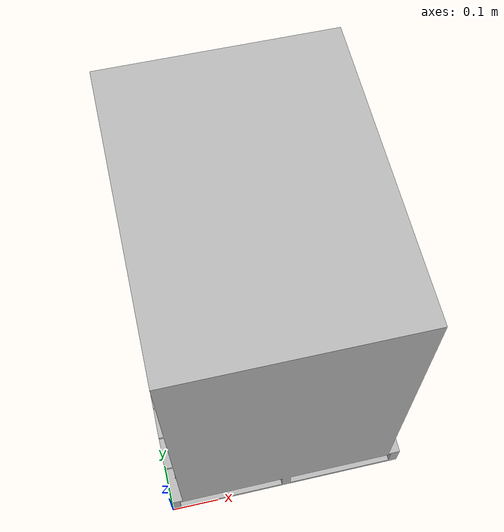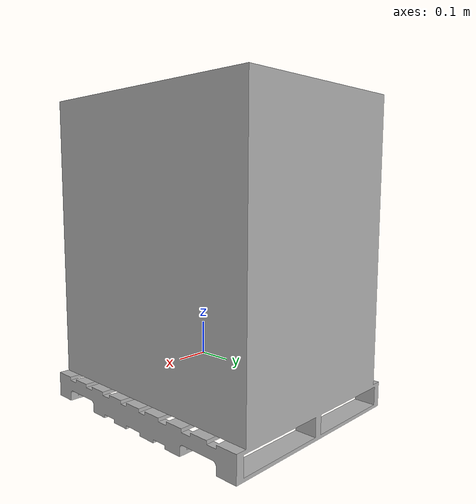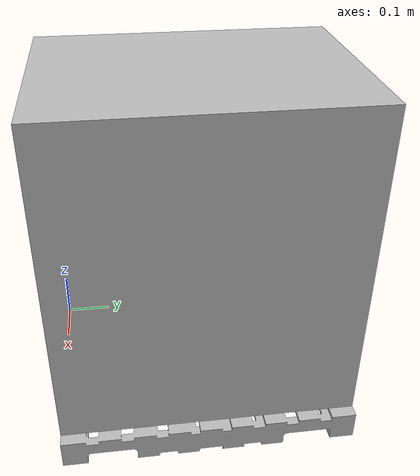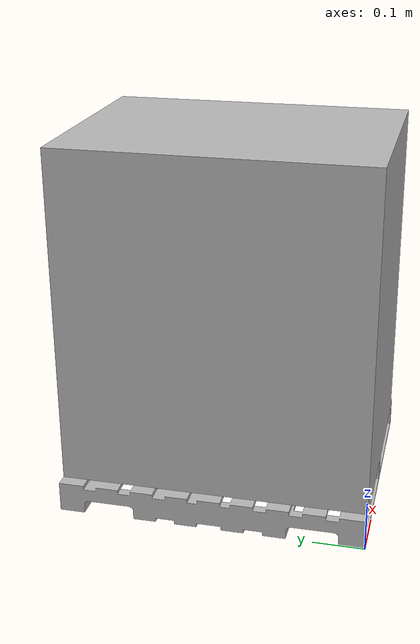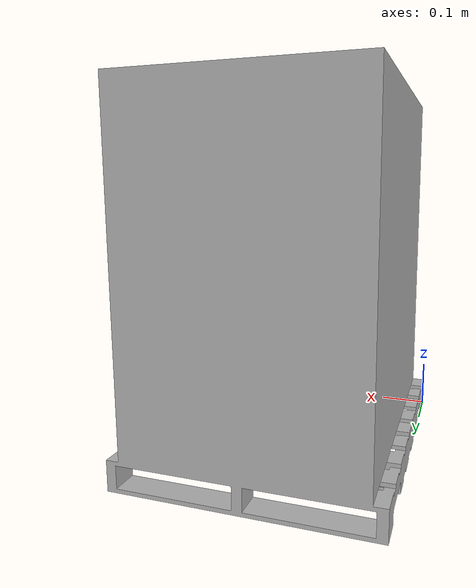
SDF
<?xml version="1.0" ?>
<sdf version="1.5">
  <model name="skid_udine_soap">
    <static>true</static>
    <link name="skid_udine_soap_link">
        <collision name="skid_udine_soap_collision">
         <geometry>
            <mesh>
                <uri>model://skid_udine_soap/meshes/model.dae</uri>
                <scale>0.5 0.5 0.5</scale>
            </mesh>
        </geometry>
      </collision>

      <visual name="skid_udine_soap_mesh">
        <cast_shadows>true</cast_shadows>
        <geometry>
            <mesh>
                <uri>model://skid_udine_soap/meshes/model.dae</uri>
                <scale>0.5 0.5 0.5</scale>
            </mesh>
        </geometry>
      </visual>
    </link>
  </model>
</sdf>
